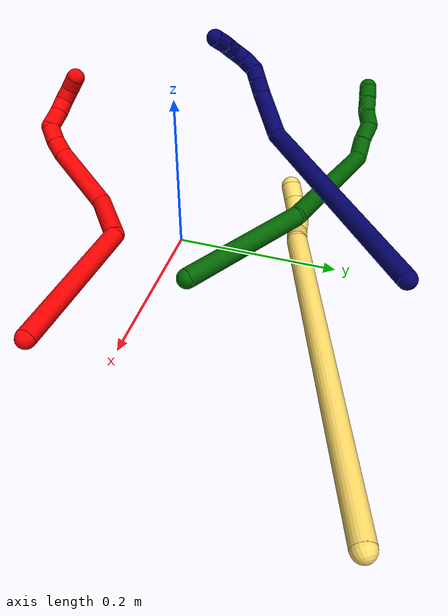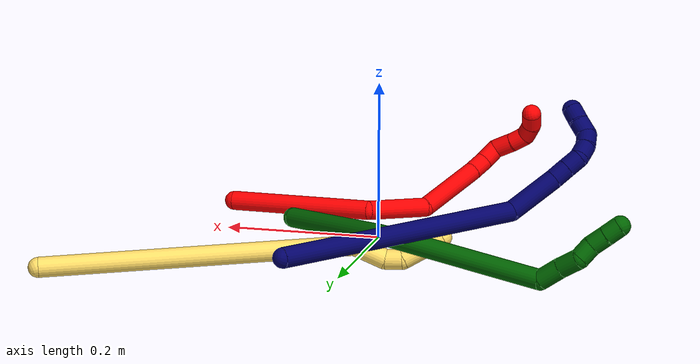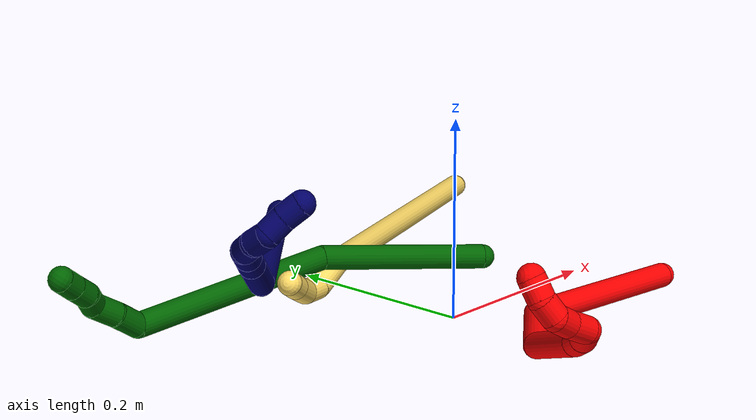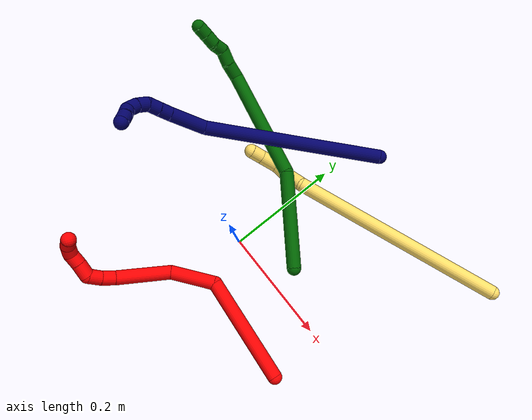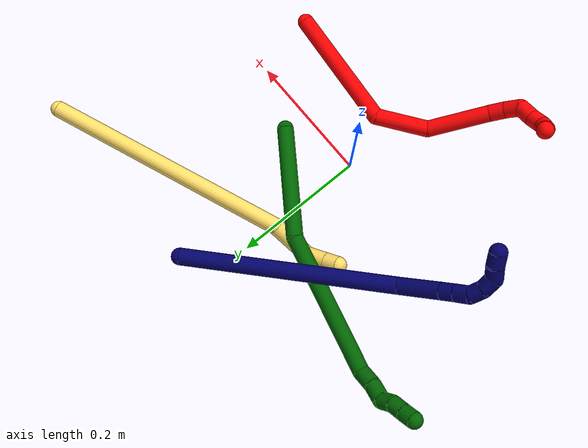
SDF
<sdf version="1.7">
 <world name="default">
  <model name="2">
   <static>0</static>
   <link name="2">
    <collision name="collision-cylinder-e_1_1_4">
     <pose>-0.018716 -0.030918 -0.087766 2.80289 -0.198487 -1.05465</pose>
     <geometry><cylinder><radius>0.0125</radius><length>0.189833</length></cylinder></geometry>
     <surface>
      <friction><ode><mu>1.16</mu><mu2>1.16</mu2><slip1>0</slip1><slip2>0</slip2></ode></friction>
      <contact><ode><kp>1e+06</kp><kd>1</kd><max_vel>0</max_vel><min_depth>0.001</min_depth></ode></contact>
     </surface>
    </collision>
    <visual name="visual-cylinder-e_1_1_4">
     <pose>-0.018716 -0.030918 -0.087766 2.80289 -0.198487 -1.05465</pose>
     <geometry><cylinder><radius>0.0125</radius><length>0.189833</length></cylinder></geometry>
     <material><ambient>1 0 0 1</ambient></material>
    </visual>
    <collision name="collision-cylinder-e_2_4_5">
     <pose>-0.066032 -0.083918 -0.193856 2.26344 -0.783738 -1.44318</pose>
     <geometry><cylinder><radius>0.0125</radius><length>0.081025</length></cylinder></geometry>
     <surface>
      <friction><ode><mu>1.16</mu><mu2>1.16</mu2><slip1>0</slip1><slip2>0</slip2></ode></friction>
      <contact><ode><kp>1e+06</kp><kd>1</kd><max_vel>0</max_vel><min_depth>0.001</min_depth></ode></contact>
     </surface>
    </collision>
    <visual name="visual-cylinder-e_2_4_5">
     <pose>-0.066032 -0.083918 -0.193856 2.26344 -0.783738 -1.44318</pose>
     <geometry><cylinder><radius>0.0125</radius><length>0.081025</length></cylinder></geometry>
     <material><ambient>1 0 0 1</ambient></material>
    </visual>
    <collision name="collision-cylinder-e_3_5_6">
     <pose>-0.141027 -0.113346 -0.220769 2.43406 -1.33183 -2.26275</pose>
     <geometry><cylinder><radius>0.0125</radius><length>0.095508</length></cylinder></geometry>
     <surface>
      <friction><ode><mu>1.16</mu><mu2>1.16</mu2><slip1>0</slip1><slip2>0</slip2></ode></friction>
      <contact><ode><kp>1e+06</kp><kd>1</kd><max_vel>0</max_vel><min_depth>0.001</min_depth></ode></contact>
     </surface>
    </collision>
    <visual name="visual-cylinder-e_3_5_6">
     <pose>-0.141027 -0.113346 -0.220769 2.43406 -1.33183 -2.26275</pose>
     <geometry><cylinder><radius>0.0125</radius><length>0.095508</length></cylinder></geometry>
     <material><ambient>1 0 0 1</ambient></material>
    </visual>
    <collision name="collision-cylinder-e_4_6_7">
     <pose>-0.19873 -0.121118 -0.232638 3.01266 -1.2863 -2.96974</pose>
     <geometry><cylinder><radius>0.0125</radius><length>0.023558</length></cylinder></geometry>
     <surface>
      <friction><ode><mu>1.16</mu><mu2>1.16</mu2><slip1>0</slip1><slip2>0</slip2></ode></friction>
      <contact><ode><kp>1e+06</kp><kd>1</kd><max_vel>0</max_vel><min_depth>0.001</min_depth></ode></contact>
     </surface>
    </collision>
    <visual name="visual-cylinder-e_4_6_7">
     <pose>-0.19873 -0.121118 -0.232638 3.01266 -1.2863 -2.96974</pose>
     <geometry><cylinder><radius>0.0125</radius><length>0.023558</length></cylinder></geometry>
     <material><ambient>1 0 0 1</ambient></material>
    </visual>
    <collision name="collision-cylinder-e_5_7_8">
     <pose>-0.220653 -0.120003 -0.240739 -2.83239 -1.1259 2.65738</pose>
     <geometry><cylinder><radius>0.0125</radius><length>0.023526</length></cylinder></geometry>
     <surface>
      <friction><ode><mu>1.16</mu><mu2>1.16</mu2><slip1>0</slip1><slip2>0</slip2></ode></friction>
      <contact><ode><kp>1e+06</kp><kd>1</kd><max_vel>0</max_vel><min_depth>0.001</min_depth></ode></contact>
     </surface>
    </collision>
    <visual name="visual-cylinder-e_5_7_8">
     <pose>-0.220653 -0.120003 -0.240739 -2.83239 -1.1259 2.65738</pose>
     <geometry><cylinder><radius>0.0125</radius><length>0.023526</length></cylinder></geometry>
     <material><ambient>1 0 0 1</ambient></material>
    </visual>
    <collision name="collision-cylinder-e_6_8_9">
     <pose>-0.235789 -0.117644 -0.257601 -3.07372 -0.358248 2.77092</pose>
     <geometry><cylinder><radius>0.0125</radius><length>0.025772</length></cylinder></geometry>
     <surface>
      <friction><ode><mu>1.16</mu><mu2>1.16</mu2><slip1>0</slip1><slip2>0</slip2></ode></friction>
      <contact><ode><kp>1e+06</kp><kd>1</kd><max_vel>0</max_vel><min_depth>0.001</min_depth></ode></contact>
     </surface>
    </collision>
    <visual name="visual-cylinder-e_6_8_9">
     <pose>-0.235789 -0.117644 -0.257601 -3.07372 -0.358248 2.77092</pose>
     <geometry><cylinder><radius>0.0125</radius><length>0.025772</length></cylinder></geometry>
     <material><ambient>1 0 0 1</ambient></material>
    </visual>
    <collision name="collision-cylinder-e_7_9_10">
     <pose>-0.244834 -0.115692 -0.278798 -3.01843 -0.456097 2.62225</pose>
     <geometry><cylinder><radius>0.0125</radius><length>0.020554</length></cylinder></geometry>
     <surface>
      <friction><ode><mu>1.16</mu><mu2>1.16</mu2><slip1>0</slip1><slip2>0</slip2></ode></friction>
      <contact><ode><kp>1e+06</kp><kd>1</kd><max_vel>0</max_vel><min_depth>0.001</min_depth></ode></contact>
     </surface>
    </collision>
    <visual name="visual-cylinder-e_7_9_10">
     <pose>-0.244834 -0.115692 -0.278798 -3.01843 -0.456097 2.62225</pose>
     <geometry><cylinder><radius>0.0125</radius><length>0.020554</length></cylinder></geometry>
     <material><ambient>1 0 0 1</ambient></material>
    </visual>
    <collision name="collision-cylinder-e_8_10_11">
     <pose>-0.251087 -0.108024 -0.295393 -2.42087 -0.172629 0.451441</pose>
     <geometry><cylinder><radius>0.0125</radius><length>0.020101</length></cylinder></geometry>
     <surface>
      <friction><ode><mu>1.16</mu><mu2>1.16</mu2><slip1>0</slip1><slip2>0</slip2></ode></friction>
      <contact><ode><kp>1e+06</kp><kd>1</kd><max_vel>0</max_vel><min_depth>0.001</min_depth></ode></contact>
     </surface>
    </collision>
    <visual name="visual-cylinder-e_8_10_11">
     <pose>-0.251087 -0.108024 -0.295393 -2.42087 -0.172629 0.451441</pose>
     <geometry><cylinder><radius>0.0125</radius><length>0.020101</length></cylinder></geometry>
     <material><ambient>1 0 0 1</ambient></material>
    </visual>
    <collision name="collision-cylinder-e_9_11_2">
     <pose>-0.252908 -0.092569 -0.307485 -2.05153 -0.009446 0.01558</pose>
     <geometry><cylinder><radius>0.0125</radius><length>0.020124</length></cylinder></geometry>
     <surface>
      <friction><ode><mu>1.16</mu><mu2>1.16</mu2><slip1>0</slip1><slip2>0</slip2></ode></friction>
      <contact><ode><kp>1e+06</kp><kd>1</kd><max_vel>0</max_vel><min_depth>0.001</min_depth></ode></contact>
     </surface>
    </collision>
    <visual name="visual-cylinder-e_9_11_2">
     <pose>-0.252908 -0.092569 -0.307485 -2.05153 -0.009446 0.01558</pose>
     <geometry><cylinder><radius>0.0125</radius><length>0.020124</length></cylinder></geometry>
     <material><ambient>1 0 0 1</ambient></material>
    </visual>
    <collision name="collision-sphere-2">
     <pose>-0.253003 -0.083648 -0.312138 0 -0 0</pose>
     <geometry><sphere><radius>0.0125</radius></sphere></geometry>
     <surface>
      <friction><ode><mu>1.16</mu><mu2>1.16</mu2><slip1>0</slip1><slip2>0</slip2></ode></friction>
      <contact><ode><kp>1e+06</kp><kd>1</kd><max_vel>0</max_vel><min_depth>0.001</min_depth></ode></contact>
     </surface>
    </collision>
    <visual name="visual-sphere-2">
     <pose>-0.253003 -0.083648 -0.312138 0 -0 0</pose>
     <geometry><sphere><radius>0.0125</radius></sphere></geometry>
     <material><ambient>1 0 0 1</ambient></material>
    </visual>
    <collision name="collision-sphere-11">
     <pose>-0.252813 -0.10149 -0.302832 0 -0 0</pose>
     <geometry><sphere><radius>0.0125</radius></sphere></geometry>
     <surface>
      <friction><ode><mu>1.16</mu><mu2>1.16</mu2><slip1>0</slip1><slip2>0</slip2></ode></friction>
      <contact><ode><kp>1e+06</kp><kd>1</kd><max_vel>0</max_vel><min_depth>0.001</min_depth></ode></contact>
     </surface>
    </collision>
    <visual name="visual-sphere-11">
     <pose>-0.252813 -0.10149 -0.302832 0 -0 0</pose>
     <geometry><sphere><radius>0.0125</radius></sphere></geometry>
     <material><ambient>1 0 0 1</ambient></material>
    </visual>
    <collision name="collision-sphere-10">
     <pose>-0.24936 -0.114558 -0.287954 0 -0 0</pose>
     <geometry><sphere><radius>0.0125</radius></sphere></geometry>
     <surface>
      <friction><ode><mu>1.16</mu><mu2>1.16</mu2><slip1>0</slip1><slip2>0</slip2></ode></friction>
      <contact><ode><kp>1e+06</kp><kd>1</kd><max_vel>0</max_vel><min_depth>0.001</min_depth></ode></contact>
     </surface>
    </collision>
    <visual name="visual-sphere-10">
     <pose>-0.24936 -0.114558 -0.287954 0 -0 0</pose>
     <geometry><sphere><radius>0.0125</radius></sphere></geometry>
     <material><ambient>1 0 0 1</ambient></material>
    </visual>
    <collision name="collision-sphere-9">
     <pose>-0.240307 -0.116825 -0.269641 0 -0 0</pose>
     <geometry><sphere><radius>0.0125</radius></sphere></geometry>
     <surface>
      <friction><ode><mu>1.16</mu><mu2>1.16</mu2><slip1>0</slip1><slip2>0</slip2></ode></friction>
      <contact><ode><kp>1e+06</kp><kd>1</kd><max_vel>0</max_vel><min_depth>0.001</min_depth></ode></contact>
     </surface>
    </collision>
    <visual name="visual-sphere-9">
     <pose>-0.240307 -0.116825 -0.269641 0 -0 0</pose>
     <geometry><sphere><radius>0.0125</radius></sphere></geometry>
     <material><ambient>1 0 0 1</ambient></material>
    </visual>
    <collision name="collision-sphere-4">
     <pose>-0.037432 -0.061836 -0.175533 0 -0 0</pose>
     <geometry><sphere><radius>0.0125</radius></sphere></geometry>
     <surface>
      <friction><ode><mu>1.16</mu><mu2>1.16</mu2><slip1>0</slip1><slip2>0</slip2></ode></friction>
      <contact><ode><kp>1e+06</kp><kd>1</kd><max_vel>0</max_vel><min_depth>0.001</min_depth></ode></contact>
     </surface>
    </collision>
    <visual name="visual-sphere-4">
     <pose>-0.037432 -0.061836 -0.175533 0 -0 0</pose>
     <geometry><sphere><radius>0.0125</radius></sphere></geometry>
     <material><ambient>1 0 0 1</ambient></material>
    </visual>
    <collision name="collision-sphere-1">
     <geometry><sphere><radius>0.0125</radius></sphere></geometry>
     <surface>
      <friction><ode><mu>1.16</mu><mu2>1.16</mu2><slip1>0</slip1><slip2>0</slip2></ode></friction>
      <contact><ode><kp>1e+06</kp><kd>1</kd><max_vel>0</max_vel><min_depth>0.001</min_depth></ode></contact>
     </surface>
    </collision>
    <visual name="visual-sphere-1">
     <geometry><sphere><radius>0.0125</radius></sphere></geometry>
     <material><ambient>1 0 0 1</ambient></material>
    </visual>
    <collision name="collision-sphere-8">
     <pose>-0.231271 -0.118462 -0.245561 0 -0 0</pose>
     <geometry><sphere><radius>0.0125</radius></sphere></geometry>
     <surface>
      <friction><ode><mu>1.16</mu><mu2>1.16</mu2><slip1>0</slip1><slip2>0</slip2></ode></friction>
      <contact><ode><kp>1e+06</kp><kd>1</kd><max_vel>0</max_vel><min_depth>0.001</min_depth></ode></contact>
     </surface>
    </collision>
    <visual name="visual-sphere-8">
     <pose>-0.231271 -0.118462 -0.245561 0 -0 0</pose>
     <geometry><sphere><radius>0.0125</radius></sphere></geometry>
     <material><ambient>1 0 0 1</ambient></material>
    </visual>
    <collision name="collision-sphere-5">
     <pose>-0.094631 -0.106 -0.212179 0 -0 0</pose>
     <geometry><sphere><radius>0.0125</radius></sphere></geometry>
     <surface>
      <friction><ode><mu>1.16</mu><mu2>1.16</mu2><slip1>0</slip1><slip2>0</slip2></ode></friction>
      <contact><ode><kp>1e+06</kp><kd>1</kd><max_vel>0</max_vel><min_depth>0.001</min_depth></ode></contact>
     </surface>
    </collision>
    <visual name="visual-sphere-5">
     <pose>-0.094631 -0.106 -0.212179 0 -0 0</pose>
     <geometry><sphere><radius>0.0125</radius></sphere></geometry>
     <material><ambient>1 0 0 1</ambient></material>
    </visual>
    <collision name="collision-sphere-6">
     <pose>-0.187424 -0.120693 -0.22936 0 -0 0</pose>
     <geometry><sphere><radius>0.0125</radius></sphere></geometry>
     <surface>
      <friction><ode><mu>1.16</mu><mu2>1.16</mu2><slip1>0</slip1><slip2>0</slip2></ode></friction>
      <contact><ode><kp>1e+06</kp><kd>1</kd><max_vel>0</max_vel><min_depth>0.001</min_depth></ode></contact>
     </surface>
    </collision>
    <visual name="visual-sphere-6">
     <pose>-0.187424 -0.120693 -0.22936 0 -0 0</pose>
     <geometry><sphere><radius>0.0125</radius></sphere></geometry>
     <material><ambient>1 0 0 1</ambient></material>
    </visual>
    <collision name="collision-sphere-7">
     <pose>-0.210035 -0.121543 -0.235917 0 -0 0</pose>
     <geometry><sphere><radius>0.0125</radius></sphere></geometry>
     <surface>
      <friction><ode><mu>1.16</mu><mu2>1.16</mu2><slip1>0</slip1><slip2>0</slip2></ode></friction>
      <contact><ode><kp>1e+06</kp><kd>1</kd><max_vel>0</max_vel><min_depth>0.001</min_depth></ode></contact>
     </surface>
    </collision>
    <visual name="visual-sphere-7">
     <pose>-0.210035 -0.121543 -0.235917 0 -0 0</pose>
     <geometry><sphere><radius>0.0125</radius></sphere></geometry>
     <material><ambient>1 0 0 1</ambient></material>
    </visual>
    <inertial>
     <pose>-0.106981 -0.077229 -0.178184 0 -0 0</pose>
     <mass>0.5</mass>
     <inertia>
      <ixx>-0.000287</ixx>
      <ixy>0</ixy>
      <ixz>0</ixz>
      <iyy>-0.000678</iyy>
      <iyz>0</iyz>
      <izz>0.000426</izz>
     </inertia>
    </inertial>
   </link>
   <pose>0.221542 -0.096057 0.011497 1.82387 0.481868 1.25806</pose>
  </model>
  <model name="5">
   <static>0</static>
   <link name="5">
    <collision name="collision-cylinder-e_1_1_4">
     <pose>-0.06573 -0.010156 -0.179543 3.08509 -0.350425 -2.82499</pose>
     <geometry><cylinder><radius>0.0125</radius><length>0.382932</length></cylinder></geometry>
     <surface>
      <friction><ode><mu>1.16</mu><mu2>1.16</mu2><slip1>0</slip1><slip2>0</slip2></ode></friction>
      <contact><ode><kp>1e+06</kp><kd>1</kd><max_vel>0</max_vel><min_depth>0.001</min_depth></ode></contact>
     </surface>
    </collision>
    <visual name="visual-cylinder-e_1_1_4">
     <pose>-0.06573 -0.010156 -0.179543 3.08509 -0.350425 -2.82499</pose>
     <geometry><cylinder><radius>0.0125</radius><length>0.382932</length></cylinder></geometry>
     <material><ambient>1 0.858824 0.4 1</ambient></material>
    </visual>
    <collision name="collision-cylinder-e_2_4_5">
     <pose>-0.146754 -0.02034 -0.372745 3.13956 -0.841836 -3.13704</pose>
     <geometry><cylinder><radius>0.0125</radius><length>0.041012</length></cylinder></geometry>
     <surface>
      <friction><ode><mu>1.16</mu><mu2>1.16</mu2><slip1>0</slip1><slip2>0</slip2></ode></friction>
      <contact><ode><kp>1e+06</kp><kd>1</kd><max_vel>0</max_vel><min_depth>0.001</min_depth></ode></contact>
     </surface>
    </collision>
    <visual name="visual-cylinder-e_2_4_5">
     <pose>-0.146754 -0.02034 -0.372745 3.13956 -0.841836 -3.13704</pose>
     <geometry><cylinder><radius>0.0125</radius><length>0.041012</length></cylinder></geometry>
     <material><ambient>1 0.858824 0.4 1</ambient></material>
    </visual>
    <collision name="collision-cylinder-e_3_5_6">
     <pose>-0.166797 -0.023143 -0.395706 2.85163 -0.454912 -2.01607</pose>
     <geometry><cylinder><radius>0.0125</radius><length>0.021612</length></cylinder></geometry>
     <surface>
      <friction><ode><mu>1.16</mu><mu2>1.16</mu2><slip1>0</slip1><slip2>0</slip2></ode></friction>
      <contact><ode><kp>1e+06</kp><kd>1</kd><max_vel>0</max_vel><min_depth>0.001</min_depth></ode></contact>
     </surface>
    </collision>
    <visual name="visual-cylinder-e_3_5_6">
     <pose>-0.166797 -0.023143 -0.395706 2.85163 -0.454912 -2.01607</pose>
     <geometry><cylinder><radius>0.0125</radius><length>0.021612</length></cylinder></geometry>
     <material><ambient>1 0.858824 0.4 1</ambient></material>
    </visual>
    <collision name="collision-cylinder-e_4_6_7">
     <pose>-0.170448 -0.028284 -0.421522 2.99932 0.065677 0.863968</pose>
     <geometry><cylinder><radius>0.0125</radius><length>0.033439</length></cylinder></geometry>
     <surface>
      <friction><ode><mu>1.16</mu><mu2>1.16</mu2><slip1>0</slip1><slip2>0</slip2></ode></friction>
      <contact><ode><kp>1e+06</kp><kd>1</kd><max_vel>0</max_vel><min_depth>0.001</min_depth></ode></contact>
     </surface>
    </collision>
    <visual name="visual-cylinder-e_4_6_7">
     <pose>-0.170448 -0.028284 -0.421522 2.99932 0.065677 0.863968</pose>
     <geometry><cylinder><radius>0.0125</radius><length>0.033439</length></cylinder></geometry>
     <material><ambient>1 0.858824 0.4 1</ambient></material>
    </visual>
    <collision name="collision-cylinder-e_5_7_2">
     <pose>-0.168291 -0.032252 -0.448363 2.9876 0.10107 1.16062</pose>
     <geometry><cylinder><radius>0.0125</radius><length>0.021005</length></cylinder></geometry>
     <surface>
      <friction><ode><mu>1.16</mu><mu2>1.16</mu2><slip1>0</slip1><slip2>0</slip2></ode></friction>
      <contact><ode><kp>1e+06</kp><kd>1</kd><max_vel>0</max_vel><min_depth>0.001</min_depth></ode></contact>
     </surface>
    </collision>
    <visual name="visual-cylinder-e_5_7_2">
     <pose>-0.168291 -0.032252 -0.448363 2.9876 0.10107 1.16062</pose>
     <geometry><cylinder><radius>0.0125</radius><length>0.021005</length></cylinder></geometry>
     <material><ambient>1 0.858824 0.4 1</ambient></material>
    </visual>
    <collision name="collision-sphere-2">
     <pose>-0.167231 -0.033855 -0.458688 0 -0 0</pose>
     <geometry><sphere><radius>0.0125</radius></sphere></geometry>
     <surface>
      <friction><ode><mu>1.16</mu><mu2>1.16</mu2><slip1>0</slip1><slip2>0</slip2></ode></friction>
      <contact><ode><kp>1e+06</kp><kd>1</kd><max_vel>0</max_vel><min_depth>0.001</min_depth></ode></contact>
     </surface>
    </collision>
    <visual name="visual-sphere-2">
     <pose>-0.167231 -0.033855 -0.458688 0 -0 0</pose>
     <geometry><sphere><radius>0.0125</radius></sphere></geometry>
     <material><ambient>1 0.858824 0.4 1</ambient></material>
    </visual>
    <collision name="collision-sphere-7">
     <pose>-0.16935 -0.030649 -0.438037 0 -0 0</pose>
     <geometry><sphere><radius>0.0125</radius></sphere></geometry>
     <surface>
      <friction><ode><mu>1.16</mu><mu2>1.16</mu2><slip1>0</slip1><slip2>0</slip2></ode></friction>
      <contact><ode><kp>1e+06</kp><kd>1</kd><max_vel>0</max_vel><min_depth>0.001</min_depth></ode></contact>
     </surface>
    </collision>
    <visual name="visual-sphere-7">
     <pose>-0.16935 -0.030649 -0.438037 0 -0 0</pose>
     <geometry><sphere><radius>0.0125</radius></sphere></geometry>
     <material><ambient>1 0.858824 0.4 1</ambient></material>
    </visual>
    <collision name="collision-sphere-6">
     <pose>-0.171545 -0.025918 -0.405007 0 -0 0</pose>
     <geometry><sphere><radius>0.0125</radius></sphere></geometry>
     <surface>
      <friction><ode><mu>1.16</mu><mu2>1.16</mu2><slip1>0</slip1><slip2>0</slip2></ode></friction>
      <contact><ode><kp>1e+06</kp><kd>1</kd><max_vel>0</max_vel><min_depth>0.001</min_depth></ode></contact>
     </surface>
    </collision>
    <visual name="visual-sphere-6">
     <pose>-0.171545 -0.025918 -0.405007 0 -0 0</pose>
     <geometry><sphere><radius>0.0125</radius></sphere></geometry>
     <material><ambient>1 0.858824 0.4 1</ambient></material>
    </visual>
    <collision name="collision-sphere-5">
     <pose>-0.162049 -0.020367 -0.386404 0 -0 0</pose>
     <geometry><sphere><radius>0.0125</radius></sphere></geometry>
     <surface>
      <friction><ode><mu>1.16</mu><mu2>1.16</mu2><slip1>0</slip1><slip2>0</slip2></ode></friction>
      <contact><ode><kp>1e+06</kp><kd>1</kd><max_vel>0</max_vel><min_depth>0.001</min_depth></ode></contact>
     </surface>
    </collision>
    <visual name="visual-sphere-5">
     <pose>-0.162049 -0.020367 -0.386404 0 -0 0</pose>
     <geometry><sphere><radius>0.0125</radius></sphere></geometry>
     <material><ambient>1 0.858824 0.4 1</ambient></material>
    </visual>
    <collision name="collision-sphere-1">
     <geometry><sphere><radius>0.0125</radius></sphere></geometry>
     <surface>
      <friction><ode><mu>1.16</mu><mu2>1.16</mu2><slip1>0</slip1><slip2>0</slip2></ode></friction>
      <contact><ode><kp>1e+06</kp><kd>1</kd><max_vel>0</max_vel><min_depth>0.001</min_depth></ode></contact>
     </surface>
    </collision>
    <visual name="visual-sphere-1">
     <geometry><sphere><radius>0.0125</radius></sphere></geometry>
     <material><ambient>1 0.858824 0.4 1</ambient></material>
    </visual>
    <collision name="collision-sphere-4">
     <pose>-0.131459 -0.020312 -0.359086 0 -0 0</pose>
     <geometry><sphere><radius>0.0125</radius></sphere></geometry>
     <surface>
      <friction><ode><mu>1.16</mu><mu2>1.16</mu2><slip1>0</slip1><slip2>0</slip2></ode></friction>
      <contact><ode><kp>1e+06</kp><kd>1</kd><max_vel>0</max_vel><min_depth>0.001</min_depth></ode></contact>
     </surface>
    </collision>
    <visual name="visual-sphere-4">
     <pose>-0.131459 -0.020312 -0.359086 0 -0 0</pose>
     <geometry><sphere><radius>0.0125</radius></sphere></geometry>
     <material><ambient>1 0.858824 0.4 1</ambient></material>
    </visual>
    <inertial>
     <pose>-0.088056 -0.013693 -0.23221 0 -0 0</pose>
     <mass>0.5</mass>
     <inertia>
      <ixx>-0.005574</ixx>
      <ixy>0</ixy>
      <ixz>0</ixz>
      <iyy>0.003115</iyy>
      <iyz>0</iyz>
      <izz>0.001832</izz>
     </inertia>
    </inertial>
   </link>
   <pose>0.349349 0.287716 0.011497 -2.24742 -1.00971 -0.403156</pose>
  </model>
  <model name="6">
   <static>0</static>
   <link name="6">
    <collision name="collision-cylinder-e_1_1_4">
     <pose>-0.0587 0.042968 -0.042972 -2.35625 -0.768081 1.54617</pose>
     <geometry><cylinder><radius>0.0125</radius><length>0.16898</length></cylinder></geometry>
     <surface>
      <friction><ode><mu>1.16</mu><mu2>1.16</mu2><slip1>0</slip1><slip2>0</slip2></ode></friction>
      <contact><ode><kp>1e+06</kp><kd>1</kd><max_vel>0</max_vel><min_depth>0.001</min_depth></ode></contact>
     </surface>
    </collision>
    <visual name="visual-cylinder-e_1_1_4">
     <pose>-0.0587 0.042968 -0.042972 -2.35625 -0.768081 1.54617</pose>
     <geometry><cylinder><radius>0.0125</radius><length>0.16898</length></cylinder></geometry>
     <material><ambient>0 0.392157 0.003922 1</ambient></material>
    </visual>
    <collision name="collision-cylinder-e_2_4_5">
     <pose>-0.196459 0.097557 -0.155805 -2.97675 -0.840319 2.77592</pose>
     <geometry><cylinder><radius>0.0125</radius><length>0.212282</length></cylinder></geometry>
     <surface>
      <friction><ode><mu>1.16</mu><mu2>1.16</mu2><slip1>0</slip1><slip2>0</slip2></ode></friction>
      <contact><ode><kp>1e+06</kp><kd>1</kd><max_vel>0</max_vel><min_depth>0.001</min_depth></ode></contact>
     </surface>
    </collision>
    <visual name="visual-cylinder-e_2_4_5">
     <pose>-0.196459 0.097557 -0.155805 -2.97675 -0.840319 2.77592</pose>
     <geometry><cylinder><radius>0.0125</radius><length>0.212282</length></cylinder></geometry>
     <material><ambient>0 0.392157 0.003922 1</ambient></material>
    </visual>
    <collision name="collision-cylinder-e_3_5_6">
     <pose>-0.290231 0.111144 -0.224992 -1.24121 -1.43049 1.11138</pose>
     <geometry><cylinder><radius>0.0125</radius><length>0.029717</length></cylinder></geometry>
     <surface>
      <friction><ode><mu>1.16</mu><mu2>1.16</mu2><slip1>0</slip1><slip2>0</slip2></ode></friction>
      <contact><ode><kp>1e+06</kp><kd>1</kd><max_vel>0</max_vel><min_depth>0.001</min_depth></ode></contact>
     </surface>
    </collision>
    <visual name="visual-cylinder-e_3_5_6">
     <pose>-0.290231 0.111144 -0.224992 -1.24121 -1.43049 1.11138</pose>
     <geometry><cylinder><radius>0.0125</radius><length>0.029717</length></cylinder></geometry>
     <material><ambient>0 0.392157 0.003922 1</ambient></material>
    </visual>
    <collision name="collision-cylinder-e_4_6_7">
     <pose>-0.317961 0.116762 -0.225018 -1.75984 -1.29255 1.4792</pose>
     <geometry><cylinder><radius>0.0125</radius><length>0.027077</length></cylinder></geometry>
     <surface>
      <friction><ode><mu>1.16</mu><mu2>1.16</mu2><slip1>0</slip1><slip2>0</slip2></ode></friction>
      <contact><ode><kp>1e+06</kp><kd>1</kd><max_vel>0</max_vel><min_depth>0.001</min_depth></ode></contact>
     </surface>
    </collision>
    <visual name="visual-cylinder-e_4_6_7">
     <pose>-0.317961 0.116762 -0.225018 -1.75984 -1.29255 1.4792</pose>
     <geometry><cylinder><radius>0.0125</radius><length>0.027077</length></cylinder></geometry>
     <material><ambient>0 0.392157 0.003922 1</ambient></material>
    </visual>
    <collision name="collision-cylinder-e_5_7_8">
     <pose>-0.340334 0.118288 -0.221838 0.501424 -1.1291 -0.321579</pose>
     <geometry><cylinder><radius>0.0125</radius><length>0.020697</length></cylinder></geometry>
     <surface>
      <friction><ode><mu>1.16</mu><mu2>1.16</mu2><slip1>0</slip1><slip2>0</slip2></ode></friction>
      <contact><ode><kp>1e+06</kp><kd>1</kd><max_vel>0</max_vel><min_depth>0.001</min_depth></ode></contact>
     </surface>
    </collision>
    <visual name="visual-cylinder-e_5_7_8">
     <pose>-0.340334 0.118288 -0.221838 0.501424 -1.1291 -0.321579</pose>
     <geometry><cylinder><radius>0.0125</radius><length>0.020697</length></cylinder></geometry>
     <material><ambient>0 0.392157 0.003922 1</ambient></material>
    </visual>
    <collision name="collision-cylinder-e_6_8_9">
     <pose>-0.360139 0.11606 -0.216725 0.082114 -1.45282 -0.072965</pose>
     <geometry><cylinder><radius>0.0125</radius><length>0.021045</length></cylinder></geometry>
     <surface>
      <friction><ode><mu>1.16</mu><mu2>1.16</mu2><slip1>0</slip1><slip2>0</slip2></ode></friction>
      <contact><ode><kp>1e+06</kp><kd>1</kd><max_vel>0</max_vel><min_depth>0.001</min_depth></ode></contact>
     </surface>
    </collision>
    <visual name="visual-cylinder-e_6_8_9">
     <pose>-0.360139 0.11606 -0.216725 0.082114 -1.45282 -0.072965</pose>
     <geometry><cylinder><radius>0.0125</radius><length>0.021045</length></cylinder></geometry>
     <material><ambient>0 0.392157 0.003922 1</ambient></material>
    </visual>
    <collision name="collision-cylinder-e_7_9_2">
     <pose>-0.380588 0.115586 -0.214107 0.262937 -1.42852 -0.228282</pose>
     <geometry><cylinder><radius>0.0125</radius><length>0.020203</length></cylinder></geometry>
     <surface>
      <friction><ode><mu>1.16</mu><mu2>1.16</mu2><slip1>0</slip1><slip2>0</slip2></ode></friction>
      <contact><ode><kp>1e+06</kp><kd>1</kd><max_vel>0</max_vel><min_depth>0.001</min_depth></ode></contact>
     </surface>
    </collision>
    <visual name="visual-cylinder-e_7_9_2">
     <pose>-0.380588 0.115586 -0.214107 0.262937 -1.42852 -0.228282</pose>
     <geometry><cylinder><radius>0.0125</radius><length>0.020203</length></cylinder></geometry>
     <material><ambient>0 0.392157 0.003922 1</ambient></material>
    </visual>
    <collision name="collision-sphere-2">
     <pose>-0.390587 0.115214 -0.212724 0 -0 0</pose>
     <geometry><sphere><radius>0.0125</radius></sphere></geometry>
     <surface>
      <friction><ode><mu>1.16</mu><mu2>1.16</mu2><slip1>0</slip1><slip2>0</slip2></ode></friction>
      <contact><ode><kp>1e+06</kp><kd>1</kd><max_vel>0</max_vel><min_depth>0.001</min_depth></ode></contact>
     </surface>
    </collision>
    <visual name="visual-sphere-2">
     <pose>-0.390587 0.115214 -0.212724 0 -0 0</pose>
     <geometry><sphere><radius>0.0125</radius></sphere></geometry>
     <material><ambient>0 0.392157 0.003922 1</ambient></material>
    </visual>
    <collision name="collision-sphere-9">
     <pose>-0.370588 0.115959 -0.21549 0 -0 0</pose>
     <geometry><sphere><radius>0.0125</radius></sphere></geometry>
     <surface>
      <friction><ode><mu>1.16</mu><mu2>1.16</mu2><slip1>0</slip1><slip2>0</slip2></ode></friction>
      <contact><ode><kp>1e+06</kp><kd>1</kd><max_vel>0</max_vel><min_depth>0.001</min_depth></ode></contact>
     </surface>
    </collision>
    <visual name="visual-sphere-9">
     <pose>-0.370588 0.115959 -0.21549 0 -0 0</pose>
     <geometry><sphere><radius>0.0125</radius></sphere></geometry>
     <material><ambient>0 0.392157 0.003922 1</ambient></material>
    </visual>
    <collision name="collision-sphere-4">
     <pose>-0.1174 0.085936 -0.085945 0 -0 0</pose>
     <geometry><sphere><radius>0.0125</radius></sphere></geometry>
     <surface>
      <friction><ode><mu>1.16</mu><mu2>1.16</mu2><slip1>0</slip1><slip2>0</slip2></ode></friction>
      <contact><ode><kp>1e+06</kp><kd>1</kd><max_vel>0</max_vel><min_depth>0.001</min_depth></ode></contact>
     </surface>
    </collision>
    <visual name="visual-sphere-4">
     <pose>-0.1174 0.085936 -0.085945 0 -0 0</pose>
     <geometry><sphere><radius>0.0125</radius></sphere></geometry>
     <material><ambient>0 0.392157 0.003922 1</ambient></material>
    </visual>
    <collision name="collision-sphere-1">
     <geometry><sphere><radius>0.0125</radius></sphere></geometry>
     <surface>
      <friction><ode><mu>1.16</mu><mu2>1.16</mu2><slip1>0</slip1><slip2>0</slip2></ode></friction>
      <contact><ode><kp>1e+06</kp><kd>1</kd><max_vel>0</max_vel><min_depth>0.001</min_depth></ode></contact>
     </surface>
    </collision>
    <visual name="visual-sphere-1">
     <geometry><sphere><radius>0.0125</radius></sphere></geometry>
     <material><ambient>0 0.392157 0.003922 1</ambient></material>
    </visual>
    <collision name="collision-sphere-8">
     <pose>-0.34969 0.116162 -0.217959 0 -0 0</pose>
     <geometry><sphere><radius>0.0125</radius></sphere></geometry>
     <surface>
      <friction><ode><mu>1.16</mu><mu2>1.16</mu2><slip1>0</slip1><slip2>0</slip2></ode></friction>
      <contact><ode><kp>1e+06</kp><kd>1</kd><max_vel>0</max_vel><min_depth>0.001</min_depth></ode></contact>
     </surface>
    </collision>
    <visual name="visual-sphere-8">
     <pose>-0.34969 0.116162 -0.217959 0 -0 0</pose>
     <geometry><sphere><radius>0.0125</radius></sphere></geometry>
     <material><ambient>0 0.392157 0.003922 1</ambient></material>
    </visual>
    <collision name="collision-sphere-5">
     <pose>-0.275519 0.109178 -0.225665 0 -0 0</pose>
     <geometry><sphere><radius>0.0125</radius></sphere></geometry>
     <surface>
      <friction><ode><mu>1.16</mu><mu2>1.16</mu2><slip1>0</slip1><slip2>0</slip2></ode></friction>
      <contact><ode><kp>1e+06</kp><kd>1</kd><max_vel>0</max_vel><min_depth>0.001</min_depth></ode></contact>
     </surface>
    </collision>
    <visual name="visual-sphere-5">
     <pose>-0.275519 0.109178 -0.225665 0 -0 0</pose>
     <geometry><sphere><radius>0.0125</radius></sphere></geometry>
     <material><ambient>0 0.392157 0.003922 1</ambient></material>
    </visual>
    <collision name="collision-sphere-6">
     <pose>-0.304944 0.11311 -0.22432 0 -0 0</pose>
     <geometry><sphere><radius>0.0125</radius></sphere></geometry>
     <surface>
      <friction><ode><mu>1.16</mu><mu2>1.16</mu2><slip1>0</slip1><slip2>0</slip2></ode></friction>
      <contact><ode><kp>1e+06</kp><kd>1</kd><max_vel>0</max_vel><min_depth>0.001</min_depth></ode></contact>
     </surface>
    </collision>
    <visual name="visual-sphere-6">
     <pose>-0.304944 0.11311 -0.22432 0 -0 0</pose>
     <geometry><sphere><radius>0.0125</radius></sphere></geometry>
     <material><ambient>0 0.392157 0.003922 1</ambient></material>
    </visual>
    <collision name="collision-sphere-7">
     <pose>-0.330979 0.120415 -0.225717 0 -0 0</pose>
     <geometry><sphere><radius>0.0125</radius></sphere></geometry>
     <surface>
      <friction><ode><mu>1.16</mu><mu2>1.16</mu2><slip1>0</slip1><slip2>0</slip2></ode></friction>
      <contact><ode><kp>1e+06</kp><kd>1</kd><max_vel>0</max_vel><min_depth>0.001</min_depth></ode></contact>
     </surface>
    </collision>
    <visual name="visual-sphere-7">
     <pose>-0.330979 0.120415 -0.225717 0 -0 0</pose>
     <geometry><sphere><radius>0.0125</radius></sphere></geometry>
     <material><ambient>0 0.392157 0.003922 1</ambient></material>
    </visual>
    <inertial>
     <pose>-0.18234 0.083321 -0.133185 0 -0 0</pose>
     <mass>0.5</mass>
     <inertia>
      <ixx>-3.7e-05</ixx>
      <ixy>0</ixy>
      <ixz>0</ixz>
      <iyy>0.001477</iyy>
      <iyz>0</iyz>
      <izz>0.000581</izz>
     </inertia>
    </inertial>
   </link>
   <pose>0.099938 0.044652 0.030598 0.310989 0.526887 0.090489</pose>
  </model>
  <model name="7">
   <static>0</static>
   <link name="7">
    <collision name="collision-cylinder-e_1_1_4">
     <pose>-0.047898 -0.039793 -0.142673 2.86959 -0.312761 -1.71198</pose>
     <geometry><cylinder><radius>0.0125</radius><length>0.311342</length></cylinder></geometry>
     <surface>
      <friction><ode><mu>1.16</mu><mu2>1.16</mu2><slip1>0</slip1><slip2>0</slip2></ode></friction>
      <contact><ode><kp>1e+06</kp><kd>1</kd><max_vel>0</max_vel><min_depth>0.001</min_depth></ode></contact>
     </surface>
    </collision>
    <visual name="visual-cylinder-e_1_1_4">
     <pose>-0.047898 -0.039793 -0.142673 2.86959 -0.312761 -1.71198</pose>
     <geometry><cylinder><radius>0.0125</radius><length>0.311342</length></cylinder></geometry>
     <material><ambient>0.003922 0 0.403922 1</ambient></material>
    </visual>
    <collision name="collision-cylinder-e_2_4_5">
     <pose>-0.118345 -0.092427 -0.306113 2.58778 -0.745673 -1.88484</pose>
     <geometry><cylinder><radius>0.0125</radius><length>0.06647</length></cylinder></geometry>
     <surface>
      <friction><ode><mu>1.16</mu><mu2>1.16</mu2><slip1>0</slip1><slip2>0</slip2></ode></friction>
      <contact><ode><kp>1e+06</kp><kd>1</kd><max_vel>0</max_vel><min_depth>0.001</min_depth></ode></contact>
     </surface>
    </collision>
    <visual name="visual-cylinder-e_2_4_5">
     <pose>-0.118345 -0.092427 -0.306113 2.58778 -0.745673 -1.88484</pose>
     <geometry><cylinder><radius>0.0125</radius><length>0.06647</length></cylinder></geometry>
     <material><ambient>0.003922 0 0.403922 1</ambient></material>
    </visual>
    <collision name="collision-cylinder-e_3_5_6">
     <pose>-0.14846 -0.109366 -0.332852 2.54019 -0.80721 -1.88545</pose>
     <geometry><cylinder><radius>0.0125</radius><length>0.02095</length></cylinder></geometry>
     <surface>
      <friction><ode><mu>1.16</mu><mu2>1.16</mu2><slip1>0</slip1><slip2>0</slip2></ode></friction>
      <contact><ode><kp>1e+06</kp><kd>1</kd><max_vel>0</max_vel><min_depth>0.001</min_depth></ode></contact>
     </surface>
    </collision>
    <visual name="visual-cylinder-e_3_5_6">
     <pose>-0.14846 -0.109366 -0.332852 2.54019 -0.80721 -1.88545</pose>
     <geometry><cylinder><radius>0.0125</radius><length>0.02095</length></cylinder></geometry>
     <material><ambient>0.003922 0 0.403922 1</ambient></material>
    </visual>
    <collision name="collision-cylinder-e_4_6_7">
     <pose>-0.163598 -0.11739 -0.344845 2.56379 -0.811374 -1.93094</pose>
     <geometry><cylinder><radius>0.0125</radius><length>0.020877</length></cylinder></geometry>
     <surface>
      <friction><ode><mu>1.16</mu><mu2>1.16</mu2><slip1>0</slip1><slip2>0</slip2></ode></friction>
      <contact><ode><kp>1e+06</kp><kd>1</kd><max_vel>0</max_vel><min_depth>0.001</min_depth></ode></contact>
     </surface>
    </collision>
    <visual name="visual-cylinder-e_4_6_7">
     <pose>-0.163598 -0.11739 -0.344845 2.56379 -0.811374 -1.93094</pose>
     <geometry><cylinder><radius>0.0125</radius><length>0.020877</length></cylinder></geometry>
     <material><ambient>0.003922 0 0.403922 1</ambient></material>
    </visual>
    <collision name="collision-cylinder-e_5_7_8">
     <pose>-0.175219 -0.129246 -0.355712 2.11945 -0.410991 -0.711748</pose>
     <geometry><cylinder><radius>0.0125</radius><length>0.020277</length></cylinder></geometry>
     <surface>
      <friction><ode><mu>1.16</mu><mu2>1.16</mu2><slip1>0</slip1><slip2>0</slip2></ode></friction>
      <contact><ode><kp>1e+06</kp><kd>1</kd><max_vel>0</max_vel><min_depth>0.001</min_depth></ode></contact>
     </surface>
    </collision>
    <visual name="visual-cylinder-e_5_7_8">
     <pose>-0.175219 -0.129246 -0.355712 2.11945 -0.410991 -0.711748</pose>
     <geometry><cylinder><radius>0.0125</radius><length>0.020277</length></cylinder></geometry>
     <material><ambient>0.003922 0 0.403922 1</ambient></material>
    </visual>
    <collision name="collision-cylinder-e_6_8_9">
     <pose>-0.18161 -0.146599 -0.363077 1.8318 -0.235512 -0.305694</pose>
     <geometry><cylinder><radius>0.0125</radius><length>0.020061</length></cylinder></geometry>
     <surface>
      <friction><ode><mu>1.16</mu><mu2>1.16</mu2><slip1>0</slip1><slip2>0</slip2></ode></friction>
      <contact><ode><kp>1e+06</kp><kd>1</kd><max_vel>0</max_vel><min_depth>0.001</min_depth></ode></contact>
     </surface>
    </collision>
    <visual name="visual-cylinder-e_6_8_9">
     <pose>-0.18161 -0.146599 -0.363077 1.8318 -0.235512 -0.305694</pose>
     <geometry><cylinder><radius>0.0125</radius><length>0.020061</length></cylinder></geometry>
     <material><ambient>0.003922 0 0.403922 1</ambient></material>
    </visual>
    <collision name="collision-cylinder-e_7_9_10">
     <pose>-0.185437 -0.165037 -0.361503 1.14478 -0.149145 -0.096205</pose>
     <geometry><cylinder><radius>0.0125</radius><length>0.020019</length></cylinder></geometry>
     <surface>
      <friction><ode><mu>1.16</mu><mu2>1.16</mu2><slip1>0</slip1><slip2>0</slip2></ode></friction>
      <contact><ode><kp>1e+06</kp><kd>1</kd><max_vel>0</max_vel><min_depth>0.001</min_depth></ode></contact>
     </surface>
    </collision>
    <visual name="visual-cylinder-e_7_9_10">
     <pose>-0.185437 -0.165037 -0.361503 1.14478 -0.149145 -0.096205</pose>
     <geometry><cylinder><radius>0.0125</radius><length>0.020019</length></cylinder></geometry>
     <material><ambient>0.003922 0 0.403922 1</ambient></material>
    </visual>
    <collision name="collision-cylinder-e_8_10_2">
     <pose>-0.187754 -0.183677 -0.354831 1.30882 -0.083003 -0.063694</pose>
     <geometry><cylinder><radius>0.0125</radius><length>0.020003</length></cylinder></geometry>
     <surface>
      <friction><ode><mu>1.16</mu><mu2>1.16</mu2><slip1>0</slip1><slip2>0</slip2></ode></friction>
      <contact><ode><kp>1e+06</kp><kd>1</kd><max_vel>0</max_vel><min_depth>0.001</min_depth></ode></contact>
     </surface>
    </collision>
    <visual name="visual-cylinder-e_8_10_2">
     <pose>-0.187754 -0.183677 -0.354831 1.30882 -0.083003 -0.063694</pose>
     <geometry><cylinder><radius>0.0125</radius><length>0.020003</length></cylinder></geometry>
     <material><ambient>0.003922 0 0.403922 1</ambient></material>
    </visual>
    <collision name="collision-sphere-2">
     <pose>-0.188583 -0.193304 -0.352249 0 -0 0</pose>
     <geometry><sphere><radius>0.0125</radius></sphere></geometry>
     <surface>
      <friction><ode><mu>1.16</mu><mu2>1.16</mu2><slip1>0</slip1><slip2>0</slip2></ode></friction>
      <contact><ode><kp>1e+06</kp><kd>1</kd><max_vel>0</max_vel><min_depth>0.001</min_depth></ode></contact>
     </surface>
    </collision>
    <visual name="visual-sphere-2">
     <pose>-0.188583 -0.193304 -0.352249 0 -0 0</pose>
     <geometry><sphere><radius>0.0125</radius></sphere></geometry>
     <material><ambient>0.003922 0 0.403922 1</ambient></material>
    </visual>
    <collision name="collision-sphere-10">
     <pose>-0.186925 -0.17405 -0.357412 0 -0 0</pose>
     <geometry><sphere><radius>0.0125</radius></sphere></geometry>
     <surface>
      <friction><ode><mu>1.16</mu><mu2>1.16</mu2><slip1>0</slip1><slip2>0</slip2></ode></friction>
      <contact><ode><kp>1e+06</kp><kd>1</kd><max_vel>0</max_vel><min_depth>0.001</min_depth></ode></contact>
     </surface>
    </collision>
    <visual name="visual-sphere-10">
     <pose>-0.186925 -0.17405 -0.357412 0 -0 0</pose>
     <geometry><sphere><radius>0.0125</radius></sphere></geometry>
     <material><ambient>0.003922 0 0.403922 1</ambient></material>
    </visual>
    <collision name="collision-sphere-9">
     <pose>-0.18395 -0.156023 -0.365593 0 -0 0</pose>
     <geometry><sphere><radius>0.0125</radius></sphere></geometry>
     <surface>
      <friction><ode><mu>1.16</mu><mu2>1.16</mu2><slip1>0</slip1><slip2>0</slip2></ode></friction>
      <contact><ode><kp>1e+06</kp><kd>1</kd><max_vel>0</max_vel><min_depth>0.001</min_depth></ode></contact>
     </surface>
    </collision>
    <visual name="visual-sphere-9">
     <pose>-0.18395 -0.156023 -0.365593 0 -0 0</pose>
     <geometry><sphere><radius>0.0125</radius></sphere></geometry>
     <material><ambient>0.003922 0 0.403922 1</ambient></material>
    </visual>
    <collision name="collision-sphere-4">
     <pose>-0.095796 -0.079586 -0.285347 0 -0 0</pose>
     <geometry><sphere><radius>0.0125</radius></sphere></geometry>
     <surface>
      <friction><ode><mu>1.16</mu><mu2>1.16</mu2><slip1>0</slip1><slip2>0</slip2></ode></friction>
      <contact><ode><kp>1e+06</kp><kd>1</kd><max_vel>0</max_vel><min_depth>0.001</min_depth></ode></contact>
     </surface>
    </collision>
    <visual name="visual-sphere-4">
     <pose>-0.095796 -0.079586 -0.285347 0 -0 0</pose>
     <geometry><sphere><radius>0.0125</radius></sphere></geometry>
     <material><ambient>0.003922 0 0.403922 1</ambient></material>
    </visual>
    <collision name="collision-sphere-1">
     <geometry><sphere><radius>0.0125</radius></sphere></geometry>
     <surface>
      <friction><ode><mu>1.16</mu><mu2>1.16</mu2><slip1>0</slip1><slip2>0</slip2></ode></friction>
      <contact><ode><kp>1e+06</kp><kd>1</kd><max_vel>0</max_vel><min_depth>0.001</min_depth></ode></contact>
     </surface>
    </collision>
    <visual name="visual-sphere-1">
     <geometry><sphere><radius>0.0125</radius></sphere></geometry>
     <material><ambient>0.003922 0 0.403922 1</ambient></material>
    </visual>
    <collision name="collision-sphere-8">
     <pose>-0.179269 -0.137176 -0.36056 0 -0 0</pose>
     <geometry><sphere><radius>0.0125</radius></sphere></geometry>
     <surface>
      <friction><ode><mu>1.16</mu><mu2>1.16</mu2><slip1>0</slip1><slip2>0</slip2></ode></friction>
      <contact><ode><kp>1e+06</kp><kd>1</kd><max_vel>0</max_vel><min_depth>0.001</min_depth></ode></contact>
     </surface>
    </collision>
    <visual name="visual-sphere-8">
     <pose>-0.179269 -0.137176 -0.36056 0 -0 0</pose>
     <geometry><sphere><radius>0.0125</radius></sphere></geometry>
     <material><ambient>0.003922 0 0.403922 1</ambient></material>
    </visual>
    <collision name="collision-sphere-5">
     <pose>-0.140894 -0.105268 -0.326879 0 -0 0</pose>
     <geometry><sphere><radius>0.0125</radius></sphere></geometry>
     <surface>
      <friction><ode><mu>1.16</mu><mu2>1.16</mu2><slip1>0</slip1><slip2>0</slip2></ode></friction>
      <contact><ode><kp>1e+06</kp><kd>1</kd><max_vel>0</max_vel><min_depth>0.001</min_depth></ode></contact>
     </surface>
    </collision>
    <visual name="visual-sphere-5">
     <pose>-0.140894 -0.105268 -0.326879 0 -0 0</pose>
     <geometry><sphere><radius>0.0125</radius></sphere></geometry>
     <material><ambient>0.003922 0 0.403922 1</ambient></material>
    </visual>
    <collision name="collision-sphere-6">
     <pose>-0.156027 -0.113465 -0.338825 0 -0 0</pose>
     <geometry><sphere><radius>0.0125</radius></sphere></geometry>
     <surface>
      <friction><ode><mu>1.16</mu><mu2>1.16</mu2><slip1>0</slip1><slip2>0</slip2></ode></friction>
      <contact><ode><kp>1e+06</kp><kd>1</kd><max_vel>0</max_vel><min_depth>0.001</min_depth></ode></contact>
     </surface>
    </collision>
    <visual name="visual-sphere-6">
     <pose>-0.156027 -0.113465 -0.338825 0 -0 0</pose>
     <geometry><sphere><radius>0.0125</radius></sphere></geometry>
     <material><ambient>0.003922 0 0.403922 1</ambient></material>
    </visual>
    <collision name="collision-sphere-7">
     <pose>-0.171168 -0.121316 -0.350865 0 -0 0</pose>
     <geometry><sphere><radius>0.0125</radius></sphere></geometry>
     <surface>
      <friction><ode><mu>1.16</mu><mu2>1.16</mu2><slip1>0</slip1><slip2>0</slip2></ode></friction>
      <contact><ode><kp>1e+06</kp><kd>1</kd><max_vel>0</max_vel><min_depth>0.001</min_depth></ode></contact>
     </surface>
    </collision>
    <visual name="visual-sphere-7">
     <pose>-0.171168 -0.121316 -0.350865 0 -0 0</pose>
     <geometry><sphere><radius>0.0125</radius></sphere></geometry>
     <material><ambient>0.003922 0 0.403922 1</ambient></material>
    </visual>
    <inertial>
     <pose>-0.087938 -0.071629 -0.215543 0 -0 0</pose>
     <mass>0.5</mass>
     <inertia>
      <ixx>-0.002758</ixx>
      <ixy>0</ixy>
      <ixz>0</ixz>
      <iyy>-0.00185</iyy>
      <iyz>0</iyz>
      <izz>0.001435</izz>
     </inertia>
    </inertial>
   </link>
   <pose>0.043614 0.285392 0.044266 -0.96922 0.941249 -0.388171</pose>
  </model>
 </world>
</sdf>
